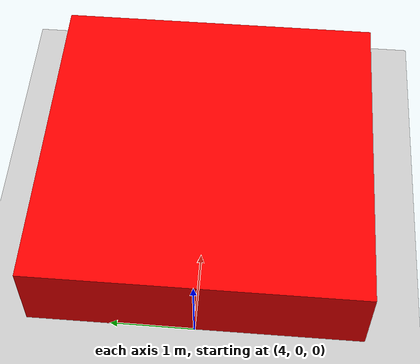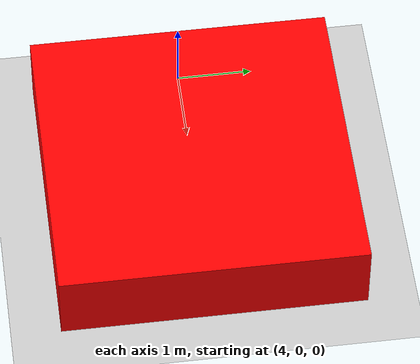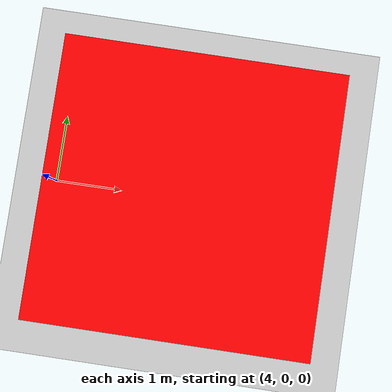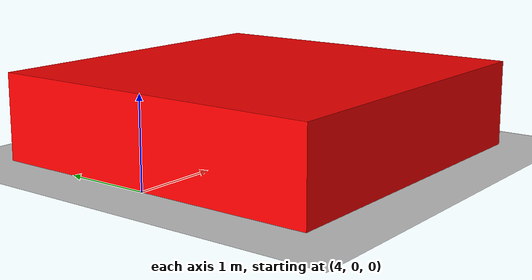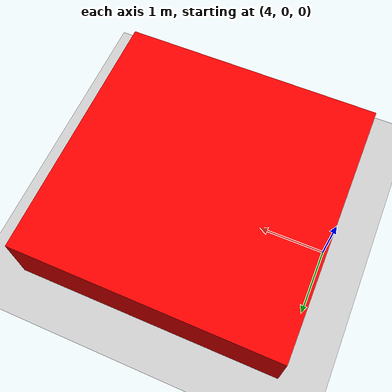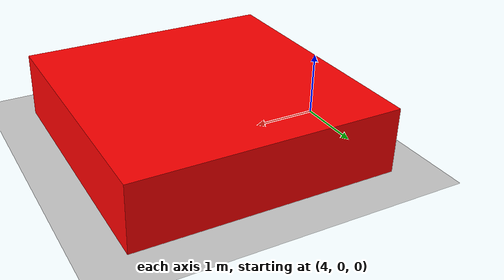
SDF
<sdf version="1.6">
  <world name="world1">
    <physics name="1ms" type="ode">
        <max_step_size>0.001</max_step_size>
        <real_time_factor>1.0</real_time_factor>
    </physics>

    <plugin
        filename="ignition-gazebo-physics-system"
        name="ignition::gazebo::systems::Physics">
    </plugin>
    <plugin
        filename="ignition-gazebo-user-commands-system"
        name="ignition::gazebo::systems::UserCommands">
    </plugin>
    <plugin
        filename="ignition-gazebo-scene-broadcaster-system"
        name="ignition::gazebo::systems::SceneBroadcaster">
    </plugin>
    <plugin filename="ignition-gazebo-sensors-system"
        name="ignition::gazebo::systems::Sensors">
        <render_engine>ogre2</render_engine>
    </plugin>
    <plugin
        filename="ignition-gazebo-buoyancy-system"
        name="ignition::gazebo::systems::Buoyancy">
        <uniform_fluid_density>1000</uniform_fluid_density>
    </plugin>

    <gravity>0 0 0</gravity>
    <scene>
        <ambient>0.6 0.6 0.6 1</ambient>
        <background>0.3 0.4 0.5 1</background>
    </scene>
    <light type="directional" name="sun">
        <cast_shadows>true</cast_shadows>
        <pose>0 0 10 0 0 0</pose>
        <diffuse>0.8 0.8 0.8 1</diffuse>
        <specular>0.2 0.2 0.2 1</specular>
        <direction>-0.5 0.1 -0.9</direction>
    </light>

    <model name='ground_plane'>
      <static>1</static>
      <link name='link'>
        <collision name='collision'>
          <geometry>
            <plane>
              <normal>0 0 1</normal>
              <size>100 100</size>
            </plane>
          </geometry>
          <surface>
            <contact>
              <collide_bitmask>65535</collide_bitmask>
              <ode/>
            </contact>
            <friction>
              <ode>
                <mu>100</mu>
                <mu2>50</mu2>
              </ode>
              <torsional>
                <ode/>
              </torsional>
            </friction>
            <bounce/>
          </surface>
          <max_contacts>10</max_contacts>
        </collision>
        <visual name='visual'>
          <cast_shadows>0</cast_shadows>
          <geometry>
            <plane>
              <normal>0 0 1</normal>
              <size>100 100</size>
            </plane>
          </geometry>
          <material>
            <script>
              <uri>file://media/materials/scripts/gazebo.material</uri>
              <name>Gazebo/Grey</name>
            </script>
          </material>
        </visual>
        <self_collide>0</self_collide>
        <enable_wind>0</enable_wind>
        <kinematic>0</kinematic>
      </link>
    </model>

    <model name="object">
        <static>true</static>
        <pose>6 0 0.5 0 0 0</pose>
        <link name="rect_link">
            <collision name="collision">
                <geometry>
                    <box>
                        <size>4 4 1</size>
                    </box>
                </geometry>
            </collision>

            <visual name="visual">
                <geometry>
                    <box>
                        <size>4 4 1</size>
                    </box>
                </geometry>
                <material>
                    <ambient>1 0 0 1</ambient>
                    <diffuse>1 0 0 1</diffuse>
                </material>
            </visual>
        </link>
    </model>
  </world>
</sdf>
